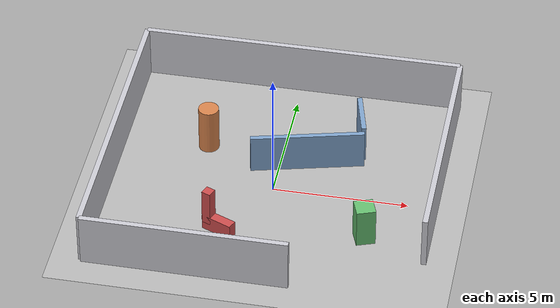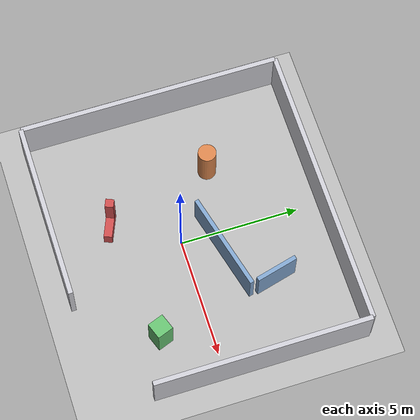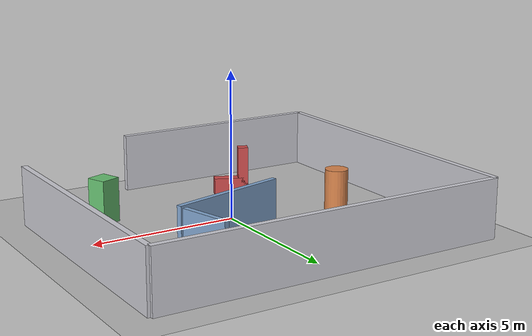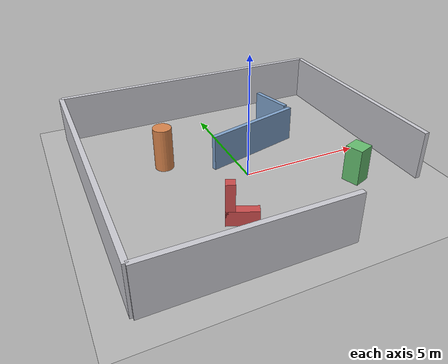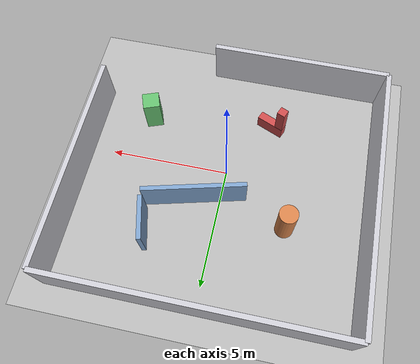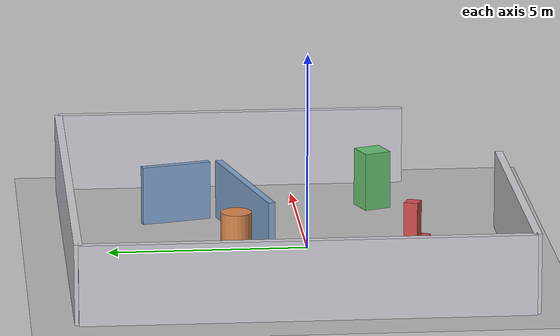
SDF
<?xml version="1.0"?>
<sdf version="1.10">
  <world name="slam_world">
    <gravity>0 0 -9.81</gravity>
    <physics name="default_physics" type="ode">
      <max_step_size>0.001</max_step_size>
      <real_time_factor>1.0</real_time_factor>
    </physics>

    <plugin filename="gz-sim-physics-system" name="gz::sim::systems::Physics"/>
    <plugin filename="gz-sim-user-commands-system" name="gz::sim::systems::UserCommands"/>
    <plugin filename="gz-sim-scene-broadcaster-system" name="gz::sim::systems::SceneBroadcaster"/>
    <plugin filename="gz-sim-sensors-system" name="gz::sim::systems::Sensors">
      <render_engine>ogre2</render_engine>
    </plugin>

    <scene>
      <ambient>0.4 0.4 0.4 1</ambient>
      <background>0.72 0.78 0.86 1</background>
      <shadows>true</shadows>
    </scene>

    <light name="sun" type="directional">
      <cast_shadows>true</cast_shadows>
      <pose>0 0 10 0 0 0</pose>
      <diffuse>0.9 0.9 0.9 1</diffuse>
      <specular>0.2 0.2 0.2 1</specular>
      <attenuation>
        <range>100</range>
        <constant>0.9</constant>
        <linear>0.01</linear>
        <quadratic>0.001</quadratic>
      </attenuation>
      <direction>-0.4 0.2 -1.0</direction>
    </light>

    <model name="ground">
      <static>true</static>
      <link name="ground_link">
        <collision name="ground_collision">
          <geometry>
            <plane>
              <normal>0 0 1</normal>
              <size>30 30</size>
            </plane>
          </geometry>
          <surface>
            <friction>
              <ode>
                <mu>1.0</mu>
                <mu2>1.0</mu2>
              </ode>
            </friction>
          </surface>
        </collision>
        <visual name="ground_visual">
          <geometry>
            <plane>
              <normal>0 0 1</normal>
              <size>30 30</size>
            </plane>
          </geometry>
          <material>
            <ambient>0.65 0.65 0.65 1</ambient>
            <diffuse>0.72 0.72 0.72 1</diffuse>
          </material>
        </visual>
      </link>
    </model>

    <model name="north_wall">
      <static>true</static>
      <pose>0 6 1 0 0 0</pose>
      <link name="link">
        <collision name="collision"><geometry><box><size>12 0.2 2</size></box></geometry></collision>
        <visual name="visual">
          <geometry><box><size>12 0.2 2</size></box></geometry>
          <material><ambient>0.70 0.70 0.73 1</ambient><diffuse>0.80 0.80 0.83 1</diffuse></material>
        </visual>
      </link>
    </model>

    <model name="west_wall">
      <static>true</static>
      <pose>-6 0.5 1 0 0 0</pose>
      <link name="link">
        <collision name="collision"><geometry><box><size>0.2 11 2</size></box></geometry></collision>
        <visual name="visual">
          <geometry><box><size>0.2 11 2</size></box></geometry>
          <material><ambient>0.70 0.70 0.73 1</ambient><diffuse>0.80 0.80 0.83 1</diffuse></material>
        </visual>
      </link>
    </model>

    <model name="south_short_wall">
      <static>true</static>
      <pose>-2.25 -5 1 0 0 0</pose>
      <link name="link">
        <collision name="collision"><geometry><box><size>7.5 0.2 2</size></box></geometry></collision>
        <visual name="visual">
          <geometry><box><size>7.5 0.2 2</size></box></geometry>
          <material><ambient>0.70 0.70 0.73 1</ambient><diffuse>0.80 0.80 0.83 1</diffuse></material>
        </visual>
      </link>
    </model>

    <model name="east_wall">
      <static>true</static>
      <pose>6 1.5 1 0 0 0</pose>
      <link name="link">
        <collision name="collision"><geometry><box><size>0.2 9 2</size></box></geometry></collision>
        <visual name="visual">
          <geometry><box><size>0.2 9 2</size></box></geometry>
          <material><ambient>0.70 0.70 0.73 1</ambient><diffuse>0.80 0.80 0.83 1</diffuse></material>
        </visual>
      </link>
    </model>

    <model name="inner_l_wall_long">
      <static>true</static>
      <pose>1.0 1.5 0.75 0 0 0.25</pose>
      <link name="link">
        <collision name="collision"><geometry><box><size>4.2 0.18 1.5</size></box></geometry></collision>
        <visual name="visual">
          <geometry><box><size>4.2 0.18 1.5</size></box></geometry>
          <material><ambient>0.45 0.58 0.72 1</ambient><diffuse>0.50 0.64 0.80 1</diffuse></material>
        </visual>
      </link>
    </model>

    <model name="inner_l_wall_short">
      <static>true</static>
      <pose>2.97 2.27 0.75 0 0 0.25</pose>
      <link name="link">
        <collision name="collision">
          <pose>0 0.9 0 0 0 0</pose>
          <geometry><box><size>0.18 1.8 1.5</size></box></geometry>
        </collision>
        <visual name="visual">
          <pose>0 0.9 0 0 0 0</pose>
          <geometry><box><size>0.18 1.8 1.5</size></box></geometry>
          <material><ambient>0.45 0.58 0.72 1</ambient><diffuse>0.50 0.64 0.80 1</diffuse></material>
        </visual>
      </link>
    </model>

    <model name="round_column">
      <static>true</static>
      <pose>-2.8 2.0 0.9 0 0 0</pose>
      <link name="link">
        <collision name="collision"><geometry><cylinder><radius>0.38</radius><length>1.8</length></cylinder></geometry></collision>
        <visual name="visual">
          <geometry><cylinder><radius>0.38</radius><length>1.8</length></cylinder></geometry>
          <material><ambient>0.75 0.45 0.25 1</ambient><diffuse>0.85 0.52 0.30 1</diffuse></material>
        </visual>
      </link>
    </model>

    <model name="square_column">
      <static>true</static>
      <pose>3.7 -2.0 0.75 0 0 0.35</pose>
      <link name="link">
        <collision name="collision"><geometry><box><size>0.7 0.7 1.5</size></box></geometry></collision>
        <visual name="visual">
          <geometry><box><size>0.7 0.7 1.5</size></box></geometry>
          <material><ambient>0.35 0.65 0.38 1</ambient><diffuse>0.40 0.75 0.44 1</diffuse></material>
        </visual>
      </link>
    </model>

    <model name="asymmetric_landmark">
      <static>true</static>
      <pose>-1.5 -2.6 0 0 0 -0.4</pose>
      <link name="link">
        <collision name="base_collision">
          <pose>0 0 0.3 0 0 0</pose>
          <geometry><box><size>1.2 0.35 0.6</size></box></geometry>
        </collision>
        <visual name="base_visual">
          <pose>0 0 0.3 0 0 0</pose>
          <geometry><box><size>1.2 0.35 0.6</size></box></geometry>
          <material><ambient>0.65 0.25 0.25 1</ambient><diffuse>0.80 0.30 0.30 1</diffuse></material>
        </visual>
        <collision name="upright_collision">
          <pose>-0.42 0 1.0 0 0 0</pose>
          <geometry><box><size>0.35 0.35 1.4</size></box></geometry>
        </collision>
        <visual name="upright_visual">
          <pose>-0.42 0 1.0 0 0 0</pose>
          <geometry><box><size>0.35 0.35 1.4</size></box></geometry>
          <material><ambient>0.65 0.25 0.25 1</ambient><diffuse>0.80 0.30 0.30 1</diffuse></material>
        </visual>
      </link>
    </model>
  </world>
</sdf>
